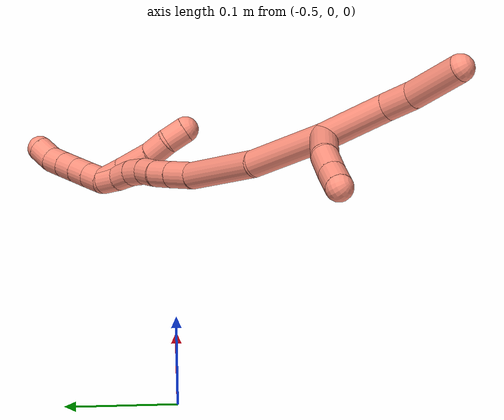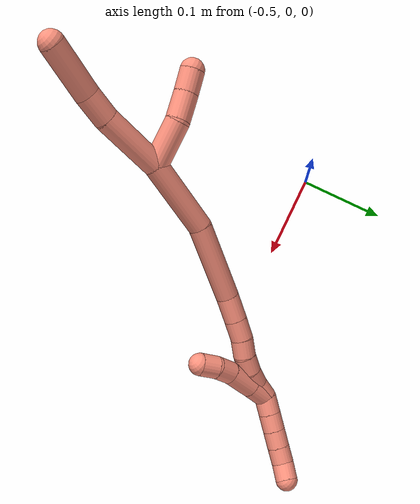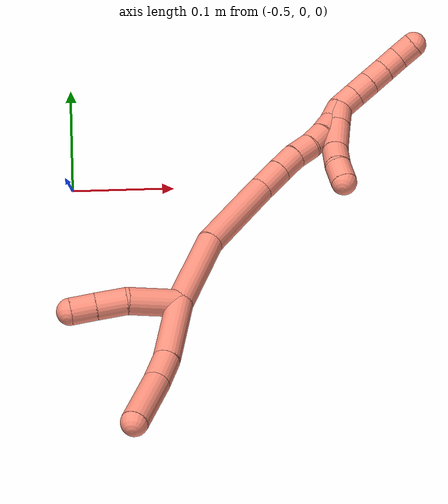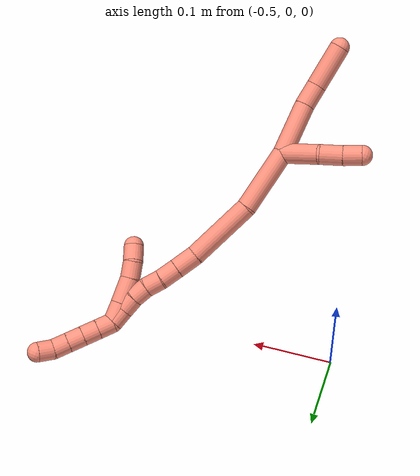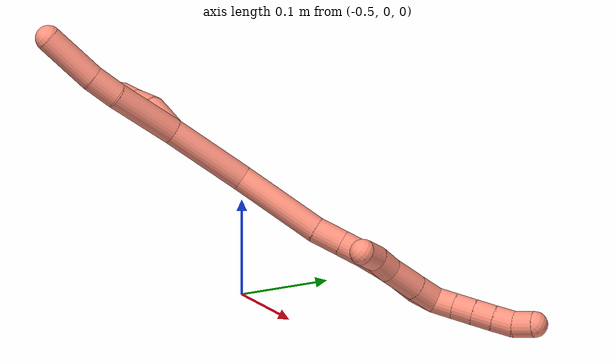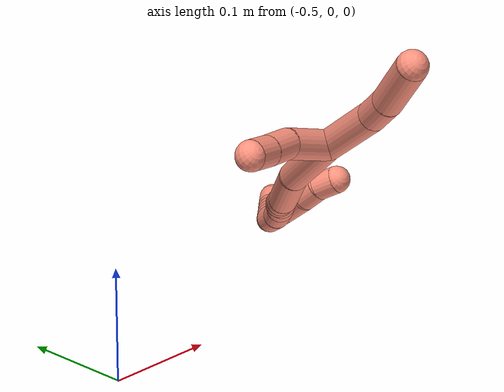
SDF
<sdf version="1.7">
 <world name="default">
  <model name="16">
   <static>0</static>
   <link name="16">
    <collision name="collision-cylinder-e_1_2_8">
     <pose>-0.001931 -4.7e-05 0.033044 0.001431 -0.058381 -4.2e-05</pose>
     <geometry><cylinder><radius>0.0125</radius><length>0.066201</length></cylinder></geometry>
     <surface>
      <friction><ode><mu>1.16</mu><mu2>1.16</mu2><slip1>0</slip1><slip2>0</slip2></ode></friction>
      <contact><ode><kp>1e+06</kp><kd>1</kd><max_vel>0</max_vel><min_depth>0.001</min_depth></ode></contact>
     </surface>
    </collision>
    <visual name="visual-cylinder-e_1_2_8">
     <pose>-0.001931 -4.7e-05 0.033044 0.001431 -0.058381 -4.2e-05</pose>
     <geometry><cylinder><radius>0.0125</radius><length>0.066201</length></cylinder></geometry>
     <material><ambient>1 0.576471 0.494118 1</ambient></material>
    </visual>
    <collision name="collision-cylinder-e_2_8_9">
     <pose>-0.004482 0.002016 0.08025 -0.147902 -0.043237 0.003204</pose>
     <geometry><cylinder><radius>0.0125</radius><length>0.028664</length></cylinder></geometry>
     <surface>
      <friction><ode><mu>1.16</mu><mu2>1.16</mu2><slip1>0</slip1><slip2>0</slip2></ode></friction>
      <contact><ode><kp>1e+06</kp><kd>1</kd><max_vel>0</max_vel><min_depth>0.001</min_depth></ode></contact>
     </surface>
    </collision>
    <visual name="visual-cylinder-e_2_8_9">
     <pose>-0.004482 0.002016 0.08025 -0.147902 -0.043237 0.003204</pose>
     <geometry><cylinder><radius>0.0125</radius><length>0.028664</length></cylinder></geometry>
     <material><ambient>1 0.576471 0.494118 1</ambient></material>
    </visual>
    <collision name="collision-cylinder-e_3_9_6">
     <pose>-0.003623 0.009986 0.121309 -0.214542 0.053673 -0.005781</pose>
     <geometry><cylinder><radius>0.0125</radius><length>0.055135</length></cylinder></geometry>
     <surface>
      <friction><ode><mu>1.16</mu><mu2>1.16</mu2><slip1>0</slip1><slip2>0</slip2></ode></friction>
      <contact><ode><kp>1e+06</kp><kd>1</kd><max_vel>0</max_vel><min_depth>0.001</min_depth></ode></contact>
     </surface>
    </collision>
    <visual name="visual-cylinder-e_3_9_6">
     <pose>-0.003623 0.009986 0.121309 -0.214542 0.053673 -0.005781</pose>
     <geometry><cylinder><radius>0.0125</radius><length>0.055135</length></cylinder></geometry>
     <material><ambient>1 0.576471 0.494118 1</ambient></material>
    </visual>
    <collision name="collision-cylinder-e_1_2_10">
     <pose>-0.003341 0.022894 0.006453 -1.29608 -0.139559 0.105735</pose>
     <geometry><cylinder><radius>0.0125</radius><length>0.04804</length></cylinder></geometry>
     <surface>
      <friction><ode><mu>1.16</mu><mu2>1.16</mu2><slip1>0</slip1><slip2>0</slip2></ode></friction>
      <contact><ode><kp>1e+06</kp><kd>1</kd><max_vel>0</max_vel><min_depth>0.001</min_depth></ode></contact>
     </surface>
    </collision>
    <visual name="visual-cylinder-e_1_2_10">
     <pose>-0.003341 0.022894 0.006453 -1.29608 -0.139559 0.105735</pose>
     <geometry><cylinder><radius>0.0125</radius><length>0.04804</length></cylinder></geometry>
     <material><ambient>1 0.576471 0.494118 1</ambient></material>
    </visual>
    <collision name="collision-cylinder-e_2_10_11">
     <pose>-0.012348 0.058033 0.017388 -1.21988 -0.409895 0.288509</pose>
     <geometry><cylinder><radius>0.0125</radius><length>0.028434</length></cylinder></geometry>
     <surface>
      <friction><ode><mu>1.16</mu><mu2>1.16</mu2><slip1>0</slip1><slip2>0</slip2></ode></friction>
      <contact><ode><kp>1e+06</kp><kd>1</kd><max_vel>0</max_vel><min_depth>0.001</min_depth></ode></contact>
     </surface>
    </collision>
    <visual name="visual-cylinder-e_2_10_11">
     <pose>-0.012348 0.058033 0.017388 -1.21988 -0.409895 0.288509</pose>
     <geometry><cylinder><radius>0.0125</radius><length>0.028434</length></cylinder></geometry>
     <material><ambient>1 0.576471 0.494118 1</ambient></material>
    </visual>
    <collision name="collision-cylinder-e_3_11_5">
     <pose>-0.022224 0.080389 0.026161 -1.16949 -0.366011 0.243817</pose>
     <geometry><cylinder><radius>0.0125</radius><length>0.023527</length></cylinder></geometry>
     <surface>
      <friction><ode><mu>1.16</mu><mu2>1.16</mu2><slip1>0</slip1><slip2>0</slip2></ode></friction>
      <contact><ode><kp>1e+06</kp><kd>1</kd><max_vel>0</max_vel><min_depth>0.001</min_depth></ode></contact>
     </surface>
    </collision>
    <visual name="visual-cylinder-e_3_11_5">
     <pose>-0.022224 0.080389 0.026161 -1.16949 -0.366011 0.243817</pose>
     <geometry><cylinder><radius>0.0125</radius><length>0.023527</length></cylinder></geometry>
     <material><ambient>1 0.576471 0.494118 1</ambient></material>
    </visual>
    <collision name="collision-cylinder-e_1_2_12">
     <pose>0.003373 -0.007114 -0.039585 2.96377 0.083661 0.877898</pose>
     <geometry><cylinder><radius>0.0125</radius><length>0.080721</length></cylinder></geometry>
     <surface>
      <friction><ode><mu>1.16</mu><mu2>1.16</mu2><slip1>0</slip1><slip2>0</slip2></ode></friction>
      <contact><ode><kp>1e+06</kp><kd>1</kd><max_vel>0</max_vel><min_depth>0.001</min_depth></ode></contact>
     </surface>
    </collision>
    <visual name="visual-cylinder-e_1_2_12">
     <pose>0.003373 -0.007114 -0.039585 2.96377 0.083661 0.877898</pose>
     <geometry><cylinder><radius>0.0125</radius><length>0.080721</length></cylinder></geometry>
     <material><ambient>1 0.576471 0.494118 1</ambient></material>
    </visual>
    <collision name="collision-cylinder-e_2_12_13">
     <pose>0.012533 -0.031605 -0.11813 2.72206 0.134858 0.614325</pose>
     <geometry><cylinder><radius>0.0125</radius><length>0.086099</length></cylinder></geometry>
     <surface>
      <friction><ode><mu>1.16</mu><mu2>1.16</mu2><slip1>0</slip1><slip2>0</slip2></ode></friction>
      <contact><ode><kp>1e+06</kp><kd>1</kd><max_vel>0</max_vel><min_depth>0.001</min_depth></ode></contact>
     </surface>
    </collision>
    <visual name="visual-cylinder-e_2_12_13">
     <pose>0.012533 -0.031605 -0.11813 2.72206 0.134858 0.614325</pose>
     <geometry><cylinder><radius>0.0125</radius><length>0.086099</length></cylinder></geometry>
     <material><ambient>1 0.576471 0.494118 1</ambient></material>
    </visual>
    <collision name="collision-cylinder-e_3_13_14">
     <pose>0.022302 -0.055203 -0.169187 2.66656 0.284673 1.06898</pose>
     <geometry><cylinder><radius>0.0125</radius><length>0.028349</length></cylinder></geometry>
     <surface>
      <friction><ode><mu>1.16</mu><mu2>1.16</mu2><slip1>0</slip1><slip2>0</slip2></ode></friction>
      <contact><ode><kp>1e+06</kp><kd>1</kd><max_vel>0</max_vel><min_depth>0.001</min_depth></ode></contact>
     </surface>
    </collision>
    <visual name="visual-cylinder-e_3_13_14">
     <pose>0.022302 -0.055203 -0.169187 2.66656 0.284673 1.06898</pose>
     <geometry><cylinder><radius>0.0125</radius><length>0.028349</length></cylinder></geometry>
     <material><ambient>1 0.576471 0.494118 1</ambient></material>
    </visual>
    <collision name="collision-cylinder-e_4_14_15">
     <pose>0.02957 -0.066749 -0.191213 2.64939 0.283906 1.03454</pose>
     <geometry><cylinder><radius>0.0125</radius><length>0.023471</length></cylinder></geometry>
     <surface>
      <friction><ode><mu>1.16</mu><mu2>1.16</mu2><slip1>0</slip1><slip2>0</slip2></ode></friction>
      <contact><ode><kp>1e+06</kp><kd>1</kd><max_vel>0</max_vel><min_depth>0.001</min_depth></ode></contact>
     </surface>
    </collision>
    <visual name="visual-cylinder-e_4_14_15">
     <pose>0.02957 -0.066749 -0.191213 2.64939 0.283906 1.03454</pose>
     <geometry><cylinder><radius>0.0125</radius><length>0.023471</length></cylinder></geometry>
     <material><ambient>1 0.576471 0.494118 1</ambient></material>
    </visual>
    <collision name="collision-cylinder-e_5_15_16">
     <pose>0.035563 -0.078136 -0.209122 2.49191 0.263636 0.75013</pose>
     <geometry><cylinder><radius>0.0125</radius><length>0.020763</length></cylinder></geometry>
     <surface>
      <friction><ode><mu>1.16</mu><mu2>1.16</mu2><slip1>0</slip1><slip2>0</slip2></ode></friction>
      <contact><ode><kp>1e+06</kp><kd>1</kd><max_vel>0</max_vel><min_depth>0.001</min_depth></ode></contact>
     </surface>
    </collision>
    <visual name="visual-cylinder-e_5_15_16">
     <pose>0.035563 -0.078136 -0.209122 2.49191 0.263636 0.75013</pose>
     <geometry><cylinder><radius>0.0125</radius><length>0.020763</length></cylinder></geometry>
     <material><ambient>1 0.576471 0.494118 1</ambient></material>
    </visual>
    <collision name="collision-cylinder-e_6_16_17">
     <pose>0.039955 -0.088687 -0.225988 2.6739 0.16794 0.679308</pose>
     <geometry><cylinder><radius>0.0125</radius><length>0.020194</length></cylinder></geometry>
     <surface>
      <friction><ode><mu>1.16</mu><mu2>1.16</mu2><slip1>0</slip1><slip2>0</slip2></ode></friction>
      <contact><ode><kp>1e+06</kp><kd>1</kd><max_vel>0</max_vel><min_depth>0.001</min_depth></ode></contact>
     </surface>
    </collision>
    <visual name="visual-cylinder-e_6_16_17">
     <pose>0.039955 -0.088687 -0.225988 2.6739 0.16794 0.679308</pose>
     <geometry><cylinder><radius>0.0125</radius><length>0.020194</length></cylinder></geometry>
     <material><ambient>1 0.576471 0.494118 1</ambient></material>
    </visual>
    <collision name="collision-cylinder-e_7_17_18">
     <pose>0.042254 -0.096562 -0.244284 2.79604 0.060947 0.345851</pose>
     <geometry><cylinder><radius>0.0125</radius><length>0.02004</length></cylinder></geometry>
     <surface>
      <friction><ode><mu>1.16</mu><mu2>1.16</mu2><slip1>0</slip1><slip2>0</slip2></ode></friction>
      <contact><ode><kp>1e+06</kp><kd>1</kd><max_vel>0</max_vel><min_depth>0.001</min_depth></ode></contact>
     </surface>
    </collision>
    <visual name="visual-cylinder-e_7_17_18">
     <pose>0.042254 -0.096562 -0.244284 2.79604 0.060947 0.345851</pose>
     <geometry><cylinder><radius>0.0125</radius><length>0.02004</length></cylinder></geometry>
     <material><ambient>1 0.576471 0.494118 1</ambient></material>
    </visual>
    <collision name="collision-cylinder-e_8_18_1">
     <pose>0.044948 -0.102071 -0.263433 2.92715 0.206121 1.53093</pose>
     <geometry><cylinder><radius>0.0125</radius><length>0.020364</length></cylinder></geometry>
     <surface>
      <friction><ode><mu>1.16</mu><mu2>1.16</mu2><slip1>0</slip1><slip2>0</slip2></ode></friction>
      <contact><ode><kp>1e+06</kp><kd>1</kd><max_vel>0</max_vel><min_depth>0.001</min_depth></ode></contact>
     </surface>
    </collision>
    <visual name="visual-cylinder-e_8_18_1">
     <pose>0.044948 -0.102071 -0.263433 2.92715 0.206121 1.53093</pose>
     <geometry><cylinder><radius>0.0125</radius><length>0.020364</length></cylinder></geometry>
     <material><ambient>1 0.576471 0.494118 1</ambient></material>
    </visual>
    <collision name="collision-cylinder-e_1_1_19">
     <pose>0.04656 -0.104779 -0.260782 0.047406 -0.038017 -0.000901</pose>
     <geometry><cylinder><radius>0.0125</radius><length>0.024824</length></cylinder></geometry>
     <surface>
      <friction><ode><mu>1.16</mu><mu2>1.16</mu2><slip1>0</slip1><slip2>0</slip2></ode></friction>
      <contact><ode><kp>1e+06</kp><kd>1</kd><max_vel>0</max_vel><min_depth>0.001</min_depth></ode></contact>
     </surface>
    </collision>
    <visual name="visual-cylinder-e_1_1_19">
     <pose>0.04656 -0.104779 -0.260782 0.047406 -0.038017 -0.000901</pose>
     <geometry><cylinder><radius>0.0125</radius><length>0.024824</length></cylinder></geometry>
     <material><ambient>1 0.576471 0.494118 1</ambient></material>
    </visual>
    <collision name="collision-cylinder-e_2_19_20">
     <pose>0.045802 -0.106445 -0.23165 0.064263 -0.017062 -0.000548</pose>
     <geometry><cylinder><radius>0.0125</radius><length>0.033558</length></cylinder></geometry>
     <surface>
      <friction><ode><mu>1.16</mu><mu2>1.16</mu2><slip1>0</slip1><slip2>0</slip2></ode></friction>
      <contact><ode><kp>1e+06</kp><kd>1</kd><max_vel>0</max_vel><min_depth>0.001</min_depth></ode></contact>
     </surface>
    </collision>
    <visual name="visual-cylinder-e_2_19_20">
     <pose>0.045802 -0.106445 -0.23165 0.064263 -0.017062 -0.000548</pose>
     <geometry><cylinder><radius>0.0125</radius><length>0.033558</length></cylinder></geometry>
     <material><ambient>1 0.576471 0.494118 1</ambient></material>
    </visual>
    <collision name="collision-cylinder-e_3_20_21">
     <pose>0.046725 -0.109627 -0.204528 0.200131 0.113701 0.011428</pose>
     <geometry><cylinder><radius>0.0125</radius><length>0.021321</length></cylinder></geometry>
     <surface>
      <friction><ode><mu>1.16</mu><mu2>1.16</mu2><slip1>0</slip1><slip2>0</slip2></ode></friction>
      <contact><ode><kp>1e+06</kp><kd>1</kd><max_vel>0</max_vel><min_depth>0.001</min_depth></ode></contact>
     </surface>
    </collision>
    <visual name="visual-cylinder-e_3_20_21">
     <pose>0.046725 -0.109627 -0.204528 0.200131 0.113701 0.011428</pose>
     <geometry><cylinder><radius>0.0125</radius><length>0.021321</length></cylinder></geometry>
     <material><ambient>1 0.576471 0.494118 1</ambient></material>
    </visual>
    <collision name="collision-cylinder-e_4_21_4">
     <pose>0.047869 -0.116028 -0.184953 0.436945 -0.006491 -0.001441</pose>
     <geometry><cylinder><radius>0.0125</radius><length>0.020297</length></cylinder></geometry>
     <surface>
      <friction><ode><mu>1.16</mu><mu2>1.16</mu2><slip1>0</slip1><slip2>0</slip2></ode></friction>
      <contact><ode><kp>1e+06</kp><kd>1</kd><max_vel>0</max_vel><min_depth>0.001</min_depth></ode></contact>
     </surface>
    </collision>
    <visual name="visual-cylinder-e_4_21_4">
     <pose>0.047869 -0.116028 -0.184953 0.436945 -0.006491 -0.001441</pose>
     <geometry><cylinder><radius>0.0125</radius><length>0.020297</length></cylinder></geometry>
     <material><ambient>1 0.576471 0.494118 1</ambient></material>
    </visual>
    <collision name="collision-cylinder-e_1_1_22">
     <pose>0.051658 -0.10918 -0.2805 2.54398 0.48095 1.3447</pose>
     <geometry><cylinder><radius>0.0125</radius><length>0.02</length></cylinder></geometry>
     <surface>
      <friction><ode><mu>1.16</mu><mu2>1.16</mu2><slip1>0</slip1><slip2>0</slip2></ode></friction>
      <contact><ode><kp>1e+06</kp><kd>1</kd><max_vel>0</max_vel><min_depth>0.001</min_depth></ode></contact>
     </surface>
    </collision>
    <visual name="visual-cylinder-e_1_1_22">
     <pose>0.051658 -0.10918 -0.2805 2.54398 0.48095 1.3447</pose>
     <geometry><cylinder><radius>0.0125</radius><length>0.02</length></cylinder></geometry>
     <material><ambient>1 0.576471 0.494118 1</ambient></material>
    </visual>
    <collision name="collision-cylinder-e_2_22_23">
     <pose>0.060943 -0.119184 -0.295118 2.53898 0.484665 1.34388</pose>
     <geometry><cylinder><radius>0.0125</radius><length>0.02</length></cylinder></geometry>
     <surface>
      <friction><ode><mu>1.16</mu><mu2>1.16</mu2><slip1>0</slip1><slip2>0</slip2></ode></friction>
      <contact><ode><kp>1e+06</kp><kd>1</kd><max_vel>0</max_vel><min_depth>0.001</min_depth></ode></contact>
     </surface>
    </collision>
    <visual name="visual-cylinder-e_2_22_23">
     <pose>0.060943 -0.119184 -0.295118 2.53898 0.484665 1.34388</pose>
     <geometry><cylinder><radius>0.0125</radius><length>0.02</length></cylinder></geometry>
     <material><ambient>1 0.576471 0.494118 1</ambient></material>
    </visual>
    <collision name="collision-cylinder-e_3_23_24">
     <pose>0.070281 -0.129199 -0.309696 2.5402 0.48688 1.3506</pose>
     <geometry><cylinder><radius>0.0125</radius><length>0.02</length></cylinder></geometry>
     <surface>
      <friction><ode><mu>1.16</mu><mu2>1.16</mu2><slip1>0</slip1><slip2>0</slip2></ode></friction>
      <contact><ode><kp>1e+06</kp><kd>1</kd><max_vel>0</max_vel><min_depth>0.001</min_depth></ode></contact>
     </surface>
    </collision>
    <visual name="visual-cylinder-e_3_23_24">
     <pose>0.070281 -0.129199 -0.309696 2.5402 0.48688 1.3506</pose>
     <geometry><cylinder><radius>0.0125</radius><length>0.02</length></cylinder></geometry>
     <material><ambient>1 0.576471 0.494118 1</ambient></material>
    </visual>
    <collision name="collision-cylinder-e_4_24_25">
     <pose>0.079749 -0.139129 -0.324247 2.54538 0.499416 1.38555</pose>
     <geometry><cylinder><radius>0.0125</radius><length>0.02</length></cylinder></geometry>
     <surface>
      <friction><ode><mu>1.16</mu><mu2>1.16</mu2><slip1>0</slip1><slip2>0</slip2></ode></friction>
      <contact><ode><kp>1e+06</kp><kd>1</kd><max_vel>0</max_vel><min_depth>0.001</min_depth></ode></contact>
     </surface>
    </collision>
    <visual name="visual-cylinder-e_4_24_25">
     <pose>0.079749 -0.139129 -0.324247 2.54538 0.499416 1.38555</pose>
     <geometry><cylinder><radius>0.0125</radius><length>0.02</length></cylinder></geometry>
     <material><ambient>1 0.576471 0.494118 1</ambient></material>
    </visual>
    <collision name="collision-cylinder-e_5_25_3">
     <pose>0.09165 -0.148868 -0.336638 2.38818 0.791255 1.62501</pose>
     <geometry><cylinder><radius>0.0125</radius><length>0.02</length></cylinder></geometry>
     <surface>
      <friction><ode><mu>1.16</mu><mu2>1.16</mu2><slip1>0</slip1><slip2>0</slip2></ode></friction>
      <contact><ode><kp>1e+06</kp><kd>1</kd><max_vel>0</max_vel><min_depth>0.001</min_depth></ode></contact>
     </surface>
    </collision>
    <visual name="visual-cylinder-e_5_25_3">
     <pose>0.09165 -0.148868 -0.336638 2.38818 0.791255 1.62501</pose>
     <geometry><cylinder><radius>0.0125</radius><length>0.02</length></cylinder></geometry>
     <material><ambient>1 0.576471 0.494118 1</ambient></material>
    </visual>
    <collision name="collision-sphere-3">
     <pose>0.098763 -0.153677 -0.341765 0 -0 0</pose>
     <geometry><sphere><radius>0.0125</radius></sphere></geometry>
     <surface>
      <friction><ode><mu>1.16</mu><mu2>1.16</mu2><slip1>0</slip1><slip2>0</slip2></ode></friction>
      <contact><ode><kp>1e+06</kp><kd>1</kd><max_vel>0</max_vel><min_depth>0.001</min_depth></ode></contact>
     </surface>
    </collision>
    <visual name="visual-sphere-3">
     <pose>0.098763 -0.153677 -0.341765 0 -0 0</pose>
     <geometry><sphere><radius>0.0125</radius></sphere></geometry>
     <material><ambient>1 0.576471 0.494118 1</ambient></material>
    </visual>
    <collision name="collision-sphere-25">
     <pose>0.084538 -0.144058 -0.331511 0 -0 0</pose>
     <geometry><sphere><radius>0.0125</radius></sphere></geometry>
     <surface>
      <friction><ode><mu>1.16</mu><mu2>1.16</mu2><slip1>0</slip1><slip2>0</slip2></ode></friction>
      <contact><ode><kp>1e+06</kp><kd>1</kd><max_vel>0</max_vel><min_depth>0.001</min_depth></ode></contact>
     </surface>
    </collision>
    <visual name="visual-sphere-25">
     <pose>0.084538 -0.144058 -0.331511 0 -0 0</pose>
     <geometry><sphere><radius>0.0125</radius></sphere></geometry>
     <material><ambient>1 0.576471 0.494118 1</ambient></material>
    </visual>
    <collision name="collision-sphere-24">
     <pose>0.07496 -0.1342 -0.316983 0 -0 0</pose>
     <geometry><sphere><radius>0.0125</radius></sphere></geometry>
     <surface>
      <friction><ode><mu>1.16</mu><mu2>1.16</mu2><slip1>0</slip1><slip2>0</slip2></ode></friction>
      <contact><ode><kp>1e+06</kp><kd>1</kd><max_vel>0</max_vel><min_depth>0.001</min_depth></ode></contact>
     </surface>
    </collision>
    <visual name="visual-sphere-24">
     <pose>0.07496 -0.1342 -0.316983 0 -0 0</pose>
     <geometry><sphere><radius>0.0125</radius></sphere></geometry>
     <material><ambient>1 0.576471 0.494118 1</ambient></material>
    </visual>
    <collision name="collision-sphere-23">
     <pose>0.065602 -0.124199 -0.302408 0 -0 0</pose>
     <geometry><sphere><radius>0.0125</radius></sphere></geometry>
     <surface>
      <friction><ode><mu>1.16</mu><mu2>1.16</mu2><slip1>0</slip1><slip2>0</slip2></ode></friction>
      <contact><ode><kp>1e+06</kp><kd>1</kd><max_vel>0</max_vel><min_depth>0.001</min_depth></ode></contact>
     </surface>
    </collision>
    <visual name="visual-sphere-23">
     <pose>0.065602 -0.124199 -0.302408 0 -0 0</pose>
     <geometry><sphere><radius>0.0125</radius></sphere></geometry>
     <material><ambient>1 0.576471 0.494118 1</ambient></material>
    </visual>
    <collision name="collision-sphere-22">
     <pose>0.056284 -0.114169 -0.287829 0 -0 0</pose>
     <geometry><sphere><radius>0.0125</radius></sphere></geometry>
     <surface>
      <friction><ode><mu>1.16</mu><mu2>1.16</mu2><slip1>0</slip1><slip2>0</slip2></ode></friction>
      <contact><ode><kp>1e+06</kp><kd>1</kd><max_vel>0</max_vel><min_depth>0.001</min_depth></ode></contact>
     </surface>
    </collision>
    <visual name="visual-sphere-22">
     <pose>0.056284 -0.114169 -0.287829 0 -0 0</pose>
     <geometry><sphere><radius>0.0125</radius></sphere></geometry>
     <material><ambient>1 0.576471 0.494118 1</ambient></material>
    </visual>
    <collision name="collision-sphere-4">
     <pose>0.047803 -0.120322 -0.175759 0 -0 0</pose>
     <geometry><sphere><radius>0.0125</radius></sphere></geometry>
     <surface>
      <friction><ode><mu>1.16</mu><mu2>1.16</mu2><slip1>0</slip1><slip2>0</slip2></ode></friction>
      <contact><ode><kp>1e+06</kp><kd>1</kd><max_vel>0</max_vel><min_depth>0.001</min_depth></ode></contact>
     </surface>
    </collision>
    <visual name="visual-sphere-4">
     <pose>0.047803 -0.120322 -0.175759 0 -0 0</pose>
     <geometry><sphere><radius>0.0125</radius></sphere></geometry>
     <material><ambient>1 0.576471 0.494118 1</ambient></material>
    </visual>
    <collision name="collision-sphere-21">
     <pose>0.047935 -0.111733 -0.194148 0 -0 0</pose>
     <geometry><sphere><radius>0.0125</radius></sphere></geometry>
     <surface>
      <friction><ode><mu>1.16</mu><mu2>1.16</mu2><slip1>0</slip1><slip2>0</slip2></ode></friction>
      <contact><ode><kp>1e+06</kp><kd>1</kd><max_vel>0</max_vel><min_depth>0.001</min_depth></ode></contact>
     </surface>
    </collision>
    <visual name="visual-sphere-21">
     <pose>0.047935 -0.111733 -0.194148 0 -0 0</pose>
     <geometry><sphere><radius>0.0125</radius></sphere></geometry>
     <material><ambient>1 0.576471 0.494118 1</ambient></material>
    </visual>
    <collision name="collision-sphere-20">
     <pose>0.045516 -0.107522 -0.214909 0 -0 0</pose>
     <geometry><sphere><radius>0.0125</radius></sphere></geometry>
     <surface>
      <friction><ode><mu>1.16</mu><mu2>1.16</mu2><slip1>0</slip1><slip2>0</slip2></ode></friction>
      <contact><ode><kp>1e+06</kp><kd>1</kd><max_vel>0</max_vel><min_depth>0.001</min_depth></ode></contact>
     </surface>
    </collision>
    <visual name="visual-sphere-20">
     <pose>0.045516 -0.107522 -0.214909 0 -0 0</pose>
     <geometry><sphere><radius>0.0125</radius></sphere></geometry>
     <material><ambient>1 0.576471 0.494118 1</ambient></material>
    </visual>
    <collision name="collision-sphere-11">
     <pose>-0.018014 0.070278 0.02187 0 -0 0</pose>
     <geometry><sphere><radius>0.0125</radius></sphere></geometry>
     <surface>
      <friction><ode><mu>1.16</mu><mu2>1.16</mu2><slip1>0</slip1><slip2>0</slip2></ode></friction>
      <contact><ode><kp>1e+06</kp><kd>1</kd><max_vel>0</max_vel><min_depth>0.001</min_depth></ode></contact>
     </surface>
    </collision>
    <visual name="visual-sphere-11">
     <pose>-0.018014 0.070278 0.02187 0 -0 0</pose>
     <geometry><sphere><radius>0.0125</radius></sphere></geometry>
     <material><ambient>1 0.576471 0.494118 1</ambient></material>
    </visual>
    <collision name="collision-sphere-10">
     <pose>-0.006683 0.045789 0.012905 0 -0 0</pose>
     <geometry><sphere><radius>0.0125</radius></sphere></geometry>
     <surface>
      <friction><ode><mu>1.16</mu><mu2>1.16</mu2><slip1>0</slip1><slip2>0</slip2></ode></friction>
      <contact><ode><kp>1e+06</kp><kd>1</kd><max_vel>0</max_vel><min_depth>0.001</min_depth></ode></contact>
     </surface>
    </collision>
    <visual name="visual-sphere-10">
     <pose>-0.006683 0.045789 0.012905 0 -0 0</pose>
     <geometry><sphere><radius>0.0125</radius></sphere></geometry>
     <material><ambient>1 0.576471 0.494118 1</ambient></material>
    </visual>
    <collision name="collision-sphere-6">
     <pose>-0.002144 0.015847 0.148206 0 -0 0</pose>
     <geometry><sphere><radius>0.0125</radius></sphere></geometry>
     <surface>
      <friction><ode><mu>1.16</mu><mu2>1.16</mu2><slip1>0</slip1><slip2>0</slip2></ode></friction>
      <contact><ode><kp>1e+06</kp><kd>1</kd><max_vel>0</max_vel><min_depth>0.001</min_depth></ode></contact>
     </surface>
    </collision>
    <visual name="visual-sphere-6">
     <pose>-0.002144 0.015847 0.148206 0 -0 0</pose>
     <geometry><sphere><radius>0.0125</radius></sphere></geometry>
     <material><ambient>1 0.576471 0.494118 1</ambient></material>
    </visual>
    <collision name="collision-sphere-9">
     <pose>-0.005102 0.004126 0.094413 0 -0 0</pose>
     <geometry><sphere><radius>0.0125</radius></sphere></geometry>
     <surface>
      <friction><ode><mu>1.16</mu><mu2>1.16</mu2><slip1>0</slip1><slip2>0</slip2></ode></friction>
      <contact><ode><kp>1e+06</kp><kd>1</kd><max_vel>0</max_vel><min_depth>0.001</min_depth></ode></contact>
     </surface>
    </collision>
    <visual name="visual-sphere-9">
     <pose>-0.005102 0.004126 0.094413 0 -0 0</pose>
     <geometry><sphere><radius>0.0125</radius></sphere></geometry>
     <material><ambient>1 0.576471 0.494118 1</ambient></material>
    </visual>
    <collision name="collision-sphere-2">
     <geometry><sphere><radius>0.0125</radius></sphere></geometry>
     <surface>
      <friction><ode><mu>1.16</mu><mu2>1.16</mu2><slip1>0</slip1><slip2>0</slip2></ode></friction>
      <contact><ode><kp>1e+06</kp><kd>1</kd><max_vel>0</max_vel><min_depth>0.001</min_depth></ode></contact>
     </surface>
    </collision>
    <visual name="visual-sphere-2">
     <geometry><sphere><radius>0.0125</radius></sphere></geometry>
     <material><ambient>1 0.576471 0.494118 1</ambient></material>
    </visual>
    <collision name="collision-sphere-19">
     <pose>0.046088 -0.105367 -0.248392 0 -0 0</pose>
     <geometry><sphere><radius>0.0125</radius></sphere></geometry>
     <surface>
      <friction><ode><mu>1.16</mu><mu2>1.16</mu2><slip1>0</slip1><slip2>0</slip2></ode></friction>
      <contact><ode><kp>1e+06</kp><kd>1</kd><max_vel>0</max_vel><min_depth>0.001</min_depth></ode></contact>
     </surface>
    </collision>
    <visual name="visual-sphere-19">
     <pose>0.046088 -0.105367 -0.248392 0 -0 0</pose>
     <geometry><sphere><radius>0.0125</radius></sphere></geometry>
     <material><ambient>1 0.576471 0.494118 1</ambient></material>
    </visual>
    <collision name="collision-sphere-8">
     <pose>-0.003863 -9.5e-05 0.066088 0 -0 0</pose>
     <geometry><sphere><radius>0.0125</radius></sphere></geometry>
     <surface>
      <friction><ode><mu>1.16</mu><mu2>1.16</mu2><slip1>0</slip1><slip2>0</slip2></ode></friction>
      <contact><ode><kp>1e+06</kp><kd>1</kd><max_vel>0</max_vel><min_depth>0.001</min_depth></ode></contact>
     </surface>
    </collision>
    <visual name="visual-sphere-8">
     <pose>-0.003863 -9.5e-05 0.066088 0 -0 0</pose>
     <geometry><sphere><radius>0.0125</radius></sphere></geometry>
     <material><ambient>1 0.576471 0.494118 1</ambient></material>
    </visual>
    <collision name="collision-sphere-5">
     <pose>-0.026434 0.090501 0.030451 0 -0 0</pose>
     <geometry><sphere><radius>0.0125</radius></sphere></geometry>
     <surface>
      <friction><ode><mu>1.16</mu><mu2>1.16</mu2><slip1>0</slip1><slip2>0</slip2></ode></friction>
      <contact><ode><kp>1e+06</kp><kd>1</kd><max_vel>0</max_vel><min_depth>0.001</min_depth></ode></contact>
     </surface>
    </collision>
    <visual name="visual-sphere-5">
     <pose>-0.026434 0.090501 0.030451 0 -0 0</pose>
     <geometry><sphere><radius>0.0125</radius></sphere></geometry>
     <material><ambient>1 0.576471 0.494118 1</ambient></material>
    </visual>
    <collision name="collision-sphere-12">
     <pose>0.006745 -0.014229 -0.07917 0 -0 0</pose>
     <geometry><sphere><radius>0.0125</radius></sphere></geometry>
     <surface>
      <friction><ode><mu>1.16</mu><mu2>1.16</mu2><slip1>0</slip1><slip2>0</slip2></ode></friction>
      <contact><ode><kp>1e+06</kp><kd>1</kd><max_vel>0</max_vel><min_depth>0.001</min_depth></ode></contact>
     </surface>
    </collision>
    <visual name="visual-sphere-12">
     <pose>0.006745 -0.014229 -0.07917 0 -0 0</pose>
     <geometry><sphere><radius>0.0125</radius></sphere></geometry>
     <material><ambient>1 0.576471 0.494118 1</ambient></material>
    </visual>
    <collision name="collision-sphere-13">
     <pose>0.018321 -0.048982 -0.157089 0 -0 0</pose>
     <geometry><sphere><radius>0.0125</radius></sphere></geometry>
     <surface>
      <friction><ode><mu>1.16</mu><mu2>1.16</mu2><slip1>0</slip1><slip2>0</slip2></ode></friction>
      <contact><ode><kp>1e+06</kp><kd>1</kd><max_vel>0</max_vel><min_depth>0.001</min_depth></ode></contact>
     </surface>
    </collision>
    <visual name="visual-sphere-13">
     <pose>0.018321 -0.048982 -0.157089 0 -0 0</pose>
     <geometry><sphere><radius>0.0125</radius></sphere></geometry>
     <material><ambient>1 0.576471 0.494118 1</ambient></material>
    </visual>
    <collision name="collision-sphere-14">
     <pose>0.026283 -0.061425 -0.181284 0 -0 0</pose>
     <geometry><sphere><radius>0.0125</radius></sphere></geometry>
     <surface>
      <friction><ode><mu>1.16</mu><mu2>1.16</mu2><slip1>0</slip1><slip2>0</slip2></ode></friction>
      <contact><ode><kp>1e+06</kp><kd>1</kd><max_vel>0</max_vel><min_depth>0.001</min_depth></ode></contact>
     </surface>
    </collision>
    <visual name="visual-sphere-14">
     <pose>0.026283 -0.061425 -0.181284 0 -0 0</pose>
     <geometry><sphere><radius>0.0125</radius></sphere></geometry>
     <material><ambient>1 0.576471 0.494118 1</ambient></material>
    </visual>
    <collision name="collision-sphere-15">
     <pose>0.032857 -0.072073 -0.201141 0 -0 0</pose>
     <geometry><sphere><radius>0.0125</radius></sphere></geometry>
     <surface>
      <friction><ode><mu>1.16</mu><mu2>1.16</mu2><slip1>0</slip1><slip2>0</slip2></ode></friction>
      <contact><ode><kp>1e+06</kp><kd>1</kd><max_vel>0</max_vel><min_depth>0.001</min_depth></ode></contact>
     </surface>
    </collision>
    <visual name="visual-sphere-15">
     <pose>0.032857 -0.072073 -0.201141 0 -0 0</pose>
     <geometry><sphere><radius>0.0125</radius></sphere></geometry>
     <material><ambient>1 0.576471 0.494118 1</ambient></material>
    </visual>
    <collision name="collision-sphere-16">
     <pose>0.038268 -0.084199 -0.217102 0 -0 0</pose>
     <geometry><sphere><radius>0.0125</radius></sphere></geometry>
     <surface>
      <friction><ode><mu>1.16</mu><mu2>1.16</mu2><slip1>0</slip1><slip2>0</slip2></ode></friction>
      <contact><ode><kp>1e+06</kp><kd>1</kd><max_vel>0</max_vel><min_depth>0.001</min_depth></ode></contact>
     </surface>
    </collision>
    <visual name="visual-sphere-16">
     <pose>0.038268 -0.084199 -0.217102 0 -0 0</pose>
     <geometry><sphere><radius>0.0125</radius></sphere></geometry>
     <material><ambient>1 0.576471 0.494118 1</ambient></material>
    </visual>
    <collision name="collision-sphere-17">
     <pose>0.041643 -0.093174 -0.234874 0 -0 0</pose>
     <geometry><sphere><radius>0.0125</radius></sphere></geometry>
     <surface>
      <friction><ode><mu>1.16</mu><mu2>1.16</mu2><slip1>0</slip1><slip2>0</slip2></ode></friction>
      <contact><ode><kp>1e+06</kp><kd>1</kd><max_vel>0</max_vel><min_depth>0.001</min_depth></ode></contact>
     </surface>
    </collision>
    <visual name="visual-sphere-17">
     <pose>0.041643 -0.093174 -0.234874 0 -0 0</pose>
     <geometry><sphere><radius>0.0125</radius></sphere></geometry>
     <material><ambient>1 0.576471 0.494118 1</ambient></material>
    </visual>
    <collision name="collision-sphere-18">
     <pose>0.042864 -0.09995 -0.253694 0 -0 0</pose>
     <geometry><sphere><radius>0.0125</radius></sphere></geometry>
     <surface>
      <friction><ode><mu>1.16</mu><mu2>1.16</mu2><slip1>0</slip1><slip2>0</slip2></ode></friction>
      <contact><ode><kp>1e+06</kp><kd>1</kd><max_vel>0</max_vel><min_depth>0.001</min_depth></ode></contact>
     </surface>
    </collision>
    <visual name="visual-sphere-18">
     <pose>0.042864 -0.09995 -0.253694 0 -0 0</pose>
     <geometry><sphere><radius>0.0125</radius></sphere></geometry>
     <material><ambient>1 0.576471 0.494118 1</ambient></material>
    </visual>
    <collision name="collision-sphere-1">
     <pose>0.047032 -0.104192 -0.273171 0 -0 0</pose>
     <geometry><sphere><radius>0.0125</radius></sphere></geometry>
     <surface>
      <friction><ode><mu>1.16</mu><mu2>1.16</mu2><slip1>0</slip1><slip2>0</slip2></ode></friction>
      <contact><ode><kp>1e+06</kp><kd>1</kd><max_vel>0</max_vel><min_depth>0.001</min_depth></ode></contact>
     </surface>
    </collision>
    <visual name="visual-sphere-1">
     <pose>0.047032 -0.104192 -0.273171 0 -0 0</pose>
     <geometry><sphere><radius>0.0125</radius></sphere></geometry>
     <material><ambient>1 0.576471 0.494118 1</ambient></material>
    </visual>
    <inertial>
     <pose>0.021654 -0.043179 -0.110008 0 -0 0</pose>
     <mass>0.75</mass>
     <inertia><ixx>0.000244</ixx><ixy>0</ixy><ixz>0</ixz><iyy>6.8e-05</iyy><iyz>0</iyz><izz>3e-06</izz></inertia>
    </inertial>
   </link>
   <pose>-0.391962 -0.131313 0.209591 0.302085 -0.858917 0.976249</pose>
  </model>
 </world>
</sdf>
